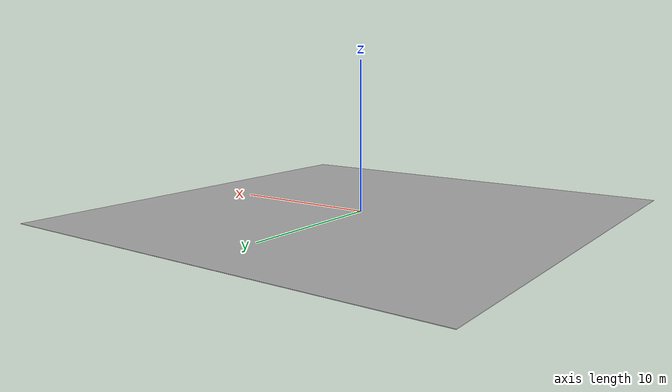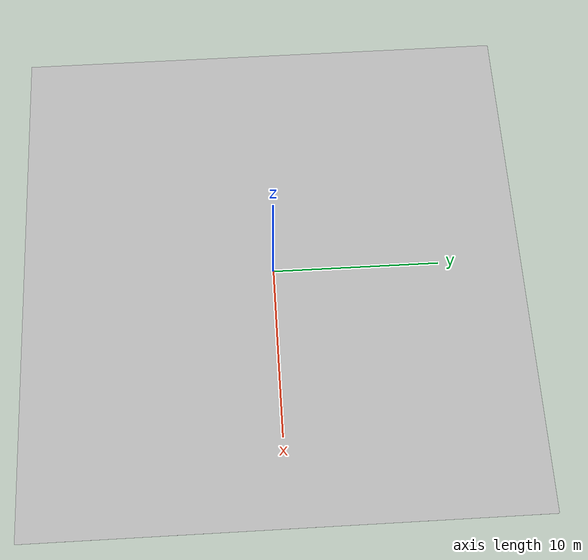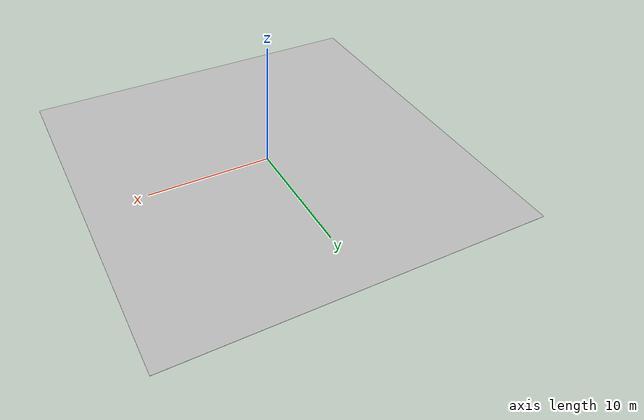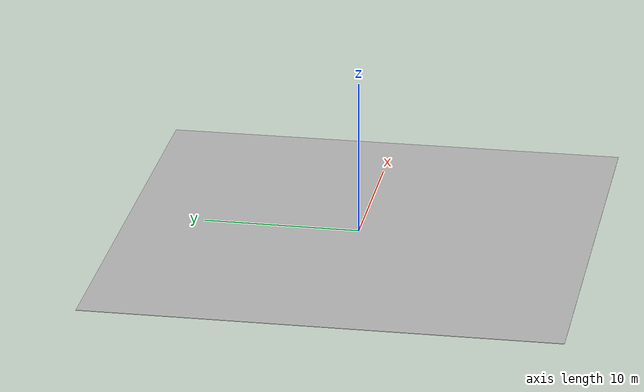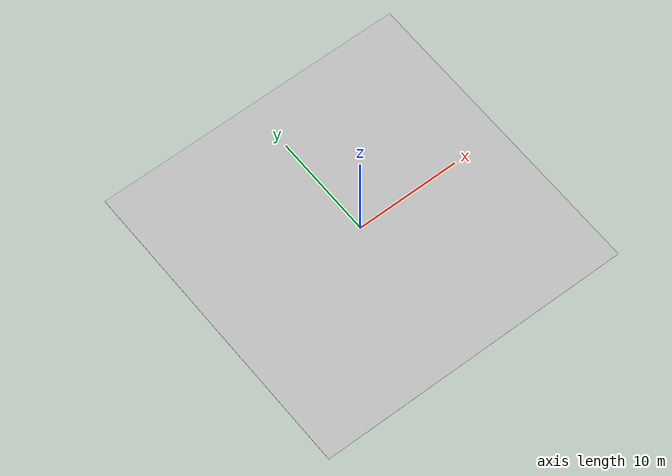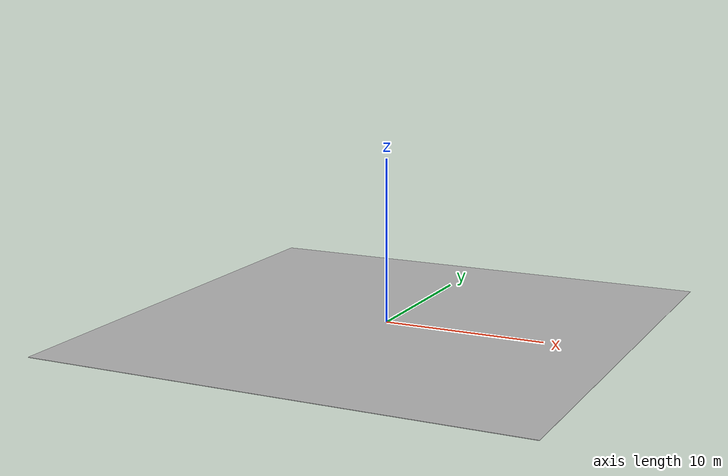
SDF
<?xml version="1.0" ?>
<sdf version="1.4">
  <model name="IARC 3D Simulation arena">
    <static>true</static>

    <link name="field">
      <pose>0 0 0.01 0 0 0</pose>
      <collision name="collision">
        <geometry>
          <plane>
            <normal>0 0 1</normal>
            <size>50.0 50.0</size>
          </plane>
        </geometry>
        <surface>
          <friction>
            <ode>
              <mu>100</mu>
              <mu2>50</mu2>
            </ode>
          </friction>
        </surface>
      </collision>

      <visual name="base2">
        <pose>0 -10 0.001 0 0 0</pose>
        <cast_shadows>false</cast_shadows>
        <geometry>
          <plane>
            <normal>0 0 1</normal>
            <size>20.0 0.08</size>
          </plane>
        </geometry>
        <material>
          <script>
            <uri>model://iarc_arena/materials/scripts/</uri>
            <uri>model://iarc_arena/materials/textures/</uri>
            <name>IARC/FieldBorderGreen</name>
          </script>
	  <ambient>0 1 0 1</ambient>
          <diffuse>0 1 0 1</diffuse>
          <specular>0.1 0.1 0.1 1</specular>
          <emissive>0 0 0 0</emissive>
        </material>
      </visual>

      <visual name="base3">
        <pose>10 0 0.001 0 0 0</pose>
        <cast_shadows>false</cast_shadows>
        <geometry>
          <plane>
            <normal>0 0 1</normal>
            <size>0.08 20.0</size>
          </plane>
        </geometry>
        <material>
          <script>
            <uri>model://iarc_arena/materials/scripts/</uri>
            <uri>model://iarc_arena/materials/textures/</uri>
            <name>IARC/FieldBorderWhite</name>
          </script>
        </material>
      </visual>

      <visual name="base4">
        <pose>-10 0 0.001 0 0 0</pose>
        <cast_shadows>false</cast_shadows>
        <geometry>
          <plane>
            <normal>0 0 1</normal>
            <size>0.08 20.0</size>
          </plane>
        </geometry>
        <material>
          <script>
            <uri>model://iarc_arena/materials/scripts/</uri>
            <uri>model://iarc_arena/materials/textures/</uri>
            <name>IARC/FieldBorderWhite</name>
          </script>
        </material>

      </visual>

      <visual name="base5">
        <pose>0 10 0.001 0 0 0</pose>
        <cast_shadows>false</cast_shadows>
        <geometry>
          <plane>
            <normal>0 0 1</normal>
            <size>20.0 0.08</size>
          </plane>
        </geometry>
        <material>
          <script>
            <uri>model://iarc_arena/materials/scripts/</uri>
            <uri>model://iarc_arena/materials/textures/</uri>
            <name>IARC/FieldBorderRed</name>
          </script>
	  <ambient>1 0 0 1</ambient>
          <diffuse>1 0 0 1</diffuse>
          <specular>0.1 0.1 0.1 1</specular>
          <emissive>0 0 0 0</emissive>
        </material>
      </visual>

      <visual name="carpet">
        <cast_shadows>false</cast_shadows>
        <geometry>
          <plane>
            <normal>0 0 1</normal>
            <size>30.0 30.0</size>
          </plane>
        </geometry>
        <material>
          <script>
            <uri>model://iarc_arena/materials/scripts/</uri>
            <uri>model://iarc_arena/materials/textures/</uri>
            <name>IARC/Ground</name>
          </script>
        </material>
      </visual>
      <visual name="base6">
        <pose>0 0 0.001 0 0 0</pose>
        <cast_shadows>false</cast_shadows>
        <geometry>
          <plane>
            <normal>0 0 1</normal>
            <size>20.0 0.08</size>
          </plane>
        </geometry>
        <material>
          <script>
            <uri>model://iarc_arena/materials/scripts/</uri>
            <uri>model://iarc_arena/materials/textures/</uri>
            <name>IARC/FieldBorderWhite</name>
          </script>
        </material>

      </visual>
    </link>
  </model>
</sdf>
